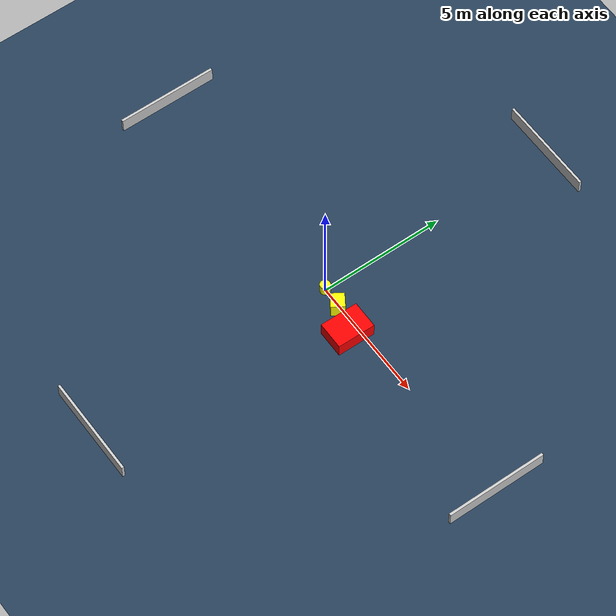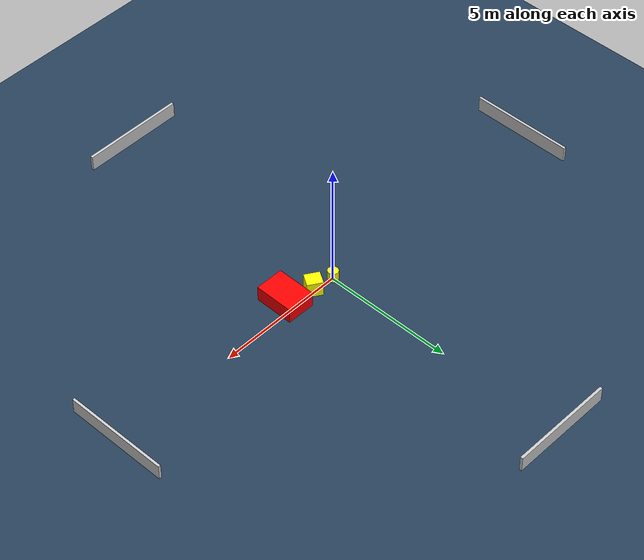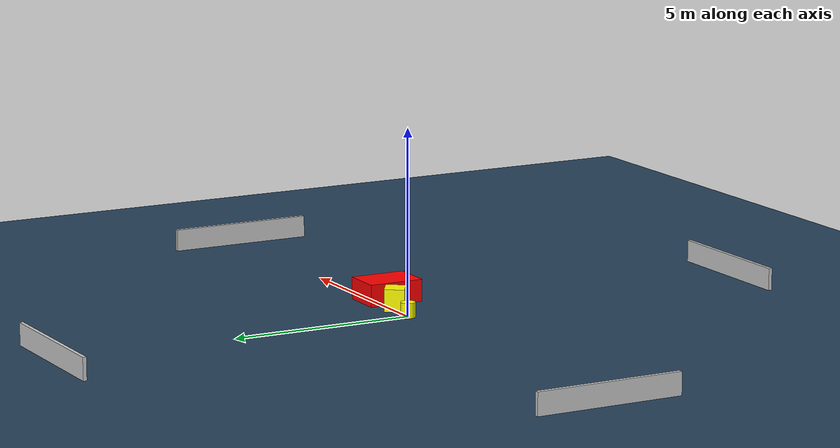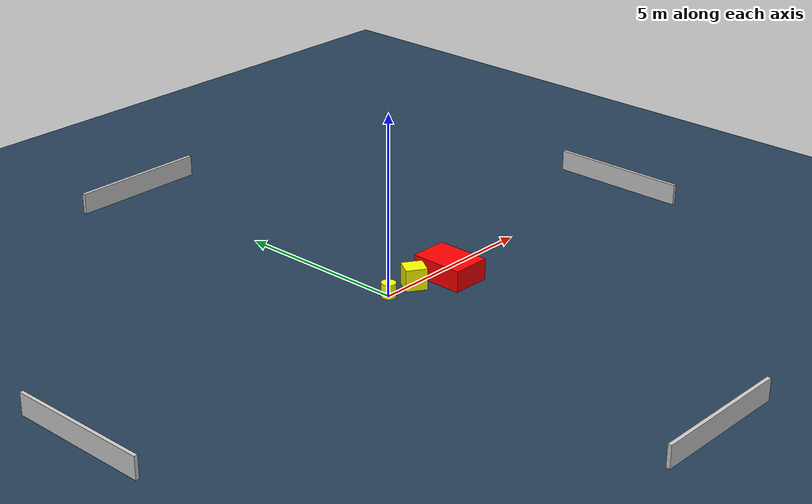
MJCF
<?xml version="1.0" ?>
<mujoco model="generated_environment">
  <option timestep="0.01" integrator="RK4" cone="elliptic"/>
  <default>
    <geom density="1"/>
  </default>
  <asset>
    <texture builtin="gradient" height="3072" name="skybox" rgb1="0.3 0.5 0.7" rgb2="0 0 0" type="skybox" width="512"/>
    <texture builtin="checker" height="300" name="groundplane" rgb1="0.2 0.3 0.4" rgb2="0.1 0.2 0.3" type="2d" width="300"/>
    <material name="groundplane" reflectance="0.2" texrepeat="5 5" texture="groundplane"/>
  </asset>
  <worldbody>
    <light dir="0 0 -1" directional="true" pos="0 0 1.5"/>
    <geom condim="3" friction="0.5 0.005 0.001" material="groundplane" name="floor" pos="0 0 0" size="0 0 0.05" type="plane"/>
    <body name="walls">
      <geom name="wall_1" condim="4" pos="-10.0 0.0 0.3" rgba="0.800000011920929 0.800000011920929 0.800000011920929 1.0" size="0.05 2.0 0.3" type="box"/>
      <geom name="wall_2" condim="4" pos="10.0 0.0 0.3" rgba="0.800000011920929 0.800000011920929 0.800000011920929 1.0" size="0.05 2.0 0.3" type="box"/>
      <geom name="wall_3" condim="4" pos="0.0 -10.0 0.3" rgba="0.800000011920929 0.800000011920929 0.800000011920929 1.0" size="2.0 0.05 0.3" type="box"/>
      <geom name="wall_4" condim="4" pos="0.0 10.0 0.3" rgba="0.800000011920929 0.800000011920929 0.800000011920929 1.0" size="2.0 0.05 0.3" type="box"/>
    </body>
    <body name="robot">
      <joint name="joint_x" type="slide" pos="0 0 0" axis="1 0 0"/>
      <joint name="joint_y" type="slide" pos="0 0 0" axis="0 1 0"/>
      <geom name="robot" type="cylinder" pos="0.0 0.0 0.2" size="0.2 0.2 0.0" mass="5.0" friction="1.0 0.005 0.0001" condim="4" rgba="1.0 1.0 0.0 1.0"/>
    </body>
    <body name="obstacle_1_movable">
      <geom name="obstacle_1_movable" condim="4" pos="0.8749077206958825 -0.0901170955624435 0.3" euler="0 0 57.41461603853905" friction="0.0 0.005 0.001" rgba="1.0 1.0 0.0 1.0" size="0.26761076809419293 0.293977453596316 0.3" type="box" mass="0.1"/>
      <joint type="free"/>
    </body>
    <body name="obstacle_2_static">
      <geom name="obstacle_2_static" condim="4" pos="1.9202564541960654 -0.40949415702461706 0.3" euler="0 0 179.4305345139968" friction="0.0 0.005 0.001" rgba="1.0 0.0 0.0 1.0" size="0.55138202313349 0.7597532717995801 0.3" type="box"/>
    </body>
  </worldbody>
  <actuator>
    <motor name="actuator_x" joint="joint_x" gear="1" ctrlrange="-1 1"/>
    <motor name="actuator_y" joint="joint_y" gear="1" ctrlrange="-1 1"/>
  </actuator>
</mujoco>
